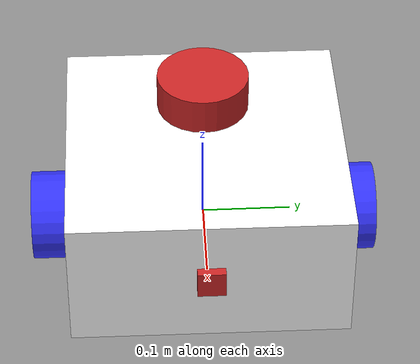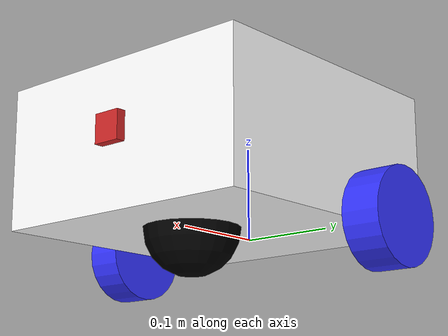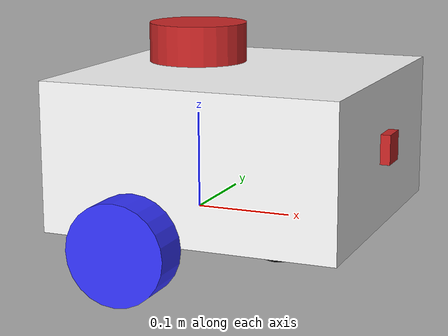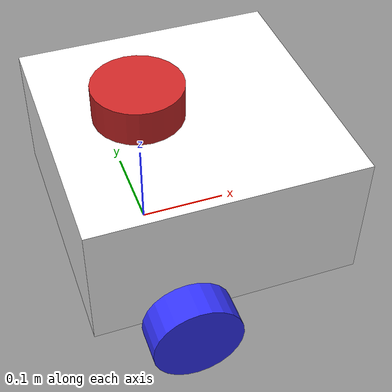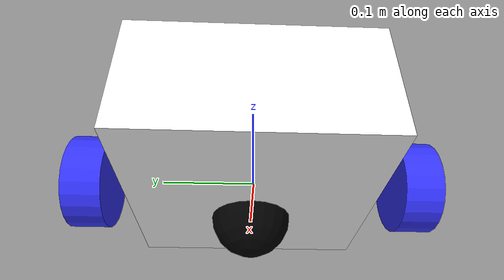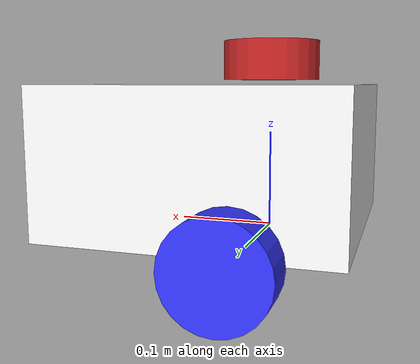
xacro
<?xml version="1.0"?>
<robot xmlns:xacro="http://www.ros.org/wiki/xacro"  name="robot">
    <xacro:arg name="use_ros2_control" default="true"/>
    <xacro:include filename="colors.xacro"/>
    <xacro:include filename="inertial_macros.xacro"/>
    <xacro:include filename="robot_core.xacro"/>
    <xacro:include filename="lidar.xacro"/>
    <xacro:include filename="camera_depth.xacro"/>
    <xacro:include filename="ros2_control.xacro"/>
</robot>

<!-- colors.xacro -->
<robot xmlns:xacro="http://www.ros.org/wiki/xacro">

    <material name="white">
        <color rgba="1 1 1 1"/>
    </material>

    <material name="orange">
        <color rgba="1 0.3 0.1 1"/>
    </material>

    <material name="blue">
        <color rgba="0.2 0.2 1 1"/>
    </material>

    <material name="black">
        <color rgba="0 0 0 1"/>
    </material>

</robot>

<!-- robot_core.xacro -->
<robot xmlns:xacro="http://www.ros.org/wiki/xacro">

    <link name="base_link"/>

    <!-- CHASSIS -->
    <xacro:property name="chassis_origin_xyz" value="0.05 0 0.125"/>
    <xacro:property name="chassis_origin_rpy" value="0 0 0"/>
    <xacro:property name="chassis_size_x" value="0.3"/>
    <xacro:property name="chassis_size_y" value="0.3"/>
    <xacro:property name="chassis_size_z" value="0.15"/>
    <link name="chassis">
        <visual>
            <origin xyz="${chassis_origin_xyz}" rpy="${chassis_origin_rpy}"/>
            <geometry>
                <box size="${chassis_size_x} ${chassis_size_y} ${chassis_size_z}"/>
            </geometry>
            <material name="white"/>
        </visual>
        <collision>
            <origin xyz="${chassis_origin_xyz}" rpy="${chassis_origin_rpy}"/>
            <geometry>
                <box size="${chassis_size_x} ${chassis_size_y} ${chassis_size_z}"/>
            </geometry>
        </collision>
        <xacro:inertial_box mass="0.1" x="${chassis_size_x}" y="${chassis_size_y}" z="${chassis_size_z}">
            <origin xyz="${chassis_origin_xyz}" rpy="${chassis_origin_rpy}"/>
        </xacro:inertial_box>
    </link>

    <joint name="chassis_joint" type="fixed">
        <parent link="base_link"/>
        <child link="chassis"/>
        <origin xyz="0 0 -0.05"/>
    </joint>

    <gazebo reference="chassis">
        <material>Gazebo/White</material>
    </gazebo>

    <xacro:property name="wheel_length" value="0.04"/>
    <xacro:property name="wheel_radius" value="0.05"/>
    <!-- LEFT WHEEL -->
    <link name="left_wheel">
        <visual>
            <geometry>
                <cylinder length="${wheel_length}" radius="${wheel_radius}"/>
            </geometry>
            <material name="blue"/>
        </visual>
        <collision>
            <geometry>
                <sphere radius="${wheel_radius}"/>
            </geometry>
        </collision>
        <xacro:inertial_cylinder mass="0.1" length="${wheel_length}" radius="${wheel_radius}">
            <origin xyz="0 0 0" rpy="0 0 0"/>
        </xacro:inertial_cylinder>
    </link>

    <xacro:property name="wheel_distance" value="0.35"/>
    <joint name="left_wheel_joint" type="continuous">
        <parent link="base_link"/>
        <child link="left_wheel"/>
        <origin xyz="0 ${wheel_distance/2} 0" rpy="-${pi/2} 0 0"/>
        <axis xyz="0 0 1"/>
    </joint>

    <gazebo reference="left_wheel">
        <material>Gazebo/Blue</material>
    </gazebo>

    <!-- RIGHT WHEEL -->
    <link name="right_wheel">
        <visual>
            <geometry>
                <cylinder length="${wheel_length}" radius="${wheel_radius}"/>
            </geometry>
            <material name="blue"/>
        </visual>
        <collision>
            <geometry>
                <sphere radius="${wheel_radius}"/>
            </geometry>
        </collision>
        <xacro:inertial_cylinder mass="0.1" length="${wheel_length}" radius="${wheel_radius}">
            <origin xyz="0 0 0" rpy="0 0 0"/>
        </xacro:inertial_cylinder>
    </link>

    <joint name="right_wheel_joint" type="continuous">
        <parent link="base_link"/>
        <child link="right_wheel"/>
        <origin xyz="0 -0.175 0" rpy="${pi/2} 0 0"/>
        <axis xyz="0 0 -1"/>
    </joint>

    <gazebo reference="right_wheel">
        <material>Gazebo/Blue</material>
    </gazebo>

    <!-- CASTER WHEEL -->
    <xacro:property name="caster_radius" value="0.05"/>
    <link name="caster_wheel">
        <visual>
            <geometry>
                <sphere radius="${caster_radius}"/>
            </geometry>
            <material name="black"/>
        </visual>
        <collision>
            <geometry>
                <sphere radius="${caster_radius}"/>
            </geometry>
        </collision>
        <xacro:inertial_sphere mass="0.1" radius="${caster_radius}">
            <origin xyz="0 0 0" rpy="0 0 0"/>
        </xacro:inertial_sphere>
    </link>

    <joint name="caster_wheel_joint" type="fixed">
        <parent link="chassis"/>
        <child link="caster_wheel"/>
        <origin xyz="0.09 0 0.05" rpy="0 0 0"/>
    </joint>

    <gazebo reference="caster_wheel">
        <material>Gazebo/Black</material>
        <mu1 value="0.001"/>
        <mu2 value="0.001"/>
    </gazebo>

    <plugin name="gazebo_ros_joint_state_publisher" filename="libgazebo_ros_joint_state_publisher.so">
        <update_rate>20</update_rate>
        <joint_name>chassis_joint</joint_name>
        <joint_name>left_wheel_joint</joint_name>
        <joint_name>right_wheel_joint</joint_name>
        <joint_name>caster_wheel_joint</joint_name>
    </plugin>

</robot>

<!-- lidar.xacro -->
<robot xmlns:xacro="http://www.ros.org/wiki/xacro">
    <xacro:property name="laser_radius" value="0.05"/>
    <xacro:property name="laser_length" value="0.04"/>
    <link name="laser_frame">
        <visual>
            <geometry>
                <cylinder radius="${laser_radius}" length="${laser_length}"/>
            </geometry>
            <material name="red"/>
        </visual>
        <colision>
            <geometry>
                <cylinder radius="${laser_radius}" length="${laser_length}"/>
            </geometry>
        </colision>
        <xacro:inertial_cylinder mass="0.1" length="${laser_length}" radius="${laser_radius}">
            <origin xyz="0 0 0" rpy="0 0 0"/>
        </xacro:inertial_cylinder>
    </link>

    <joint name="laser_joint" type="fixed">
        <parent link="chassis"/>
        <child link="laser_frame"/>
        <origin xyz="0 0 0.225" rpy="0 0 0"/>
    </joint>

    <gazebo reference="laser_frame">
        <material>Gazebo/Red</material>
        <sensor name="laser" type="ray">
            <pose> 0 0 0 0 0 0 </pose>
            <visualize>false</visualize>
            <update_rate>10</update_rate>
            <ray>
                <scan>
                    <horizontal>
                        <samples>360</samples>
                        <min_angle>-3.14</min_angle>
                        <max_angle>3.14</max_angle>
                    </horizontal>
                </scan>
                <range>
                    <min>0.3</min>
                    <max>12</max>
                </range>
            </ray>
            <plugin name="laser_controller" filename="libgazebo_ros_ray_sensor.so">
                <ros>
                    <argument>~/out:=scan</argument>
                </ros>
                <output_type>sensor_msgs/LaserScan</output_type>
                <frame_name>laser_frame</frame_name>
            </plugin>
        </sensor>
    </gazebo>
</robot>

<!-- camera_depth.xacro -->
<robot xmlns:xacro="http://www.ros.org/wiki/xacro" >

    <joint name="camera_joint" type="fixed">
        <parent link="chassis"/>
        <child link="camera_link"/>
        <origin xyz="0.205 0 0.13" rpy="0 0 0"/>
    </joint>

    <link name="camera_link">
        <visual>
            <geometry>
                <box size="0.010 0.03 0.03"/>
            </geometry>
            <material name="red"/>
        </visual>
    </link>

    <joint name="camera_optical_joint" type="fixed">
        <parent link="camera_link"/>
        <child link="camera_link_optical"/>
        <origin xyz="0 0 0" rpy="${-pi/2} 0 ${-pi/2}"/>
    </joint>

    <link name="camera_link_optical"></link>

    <gazebo reference="camera_link">
        <material>Gazebo/Red</material>

        <sensor name="camera" type="depth">
            <pose> 0 0 0 0 0 0 </pose>
            <visualize>true</visualize>
            <update_rate>10</update_rate>
            <camera>
                <horizontal_fov>1.089</horizontal_fov>
                <image>
                    <format>B8G8R8</format>
                    <width>640</width>
                    <height>480</height>
                </image>
                <clip>
                    <near>0.05</near>
                    <far>8.0</far>
                </clip>
            </camera>
            <plugin name="camera_controller" filename="libgazebo_ros_camera.so">
                <frame_name>camera_link_optical</frame_name>
                <min_depth>0.1</min_depth>
                <max_depth>100.0</max_depth>
            </plugin>
        </sensor>
    </gazebo>

</robot>
